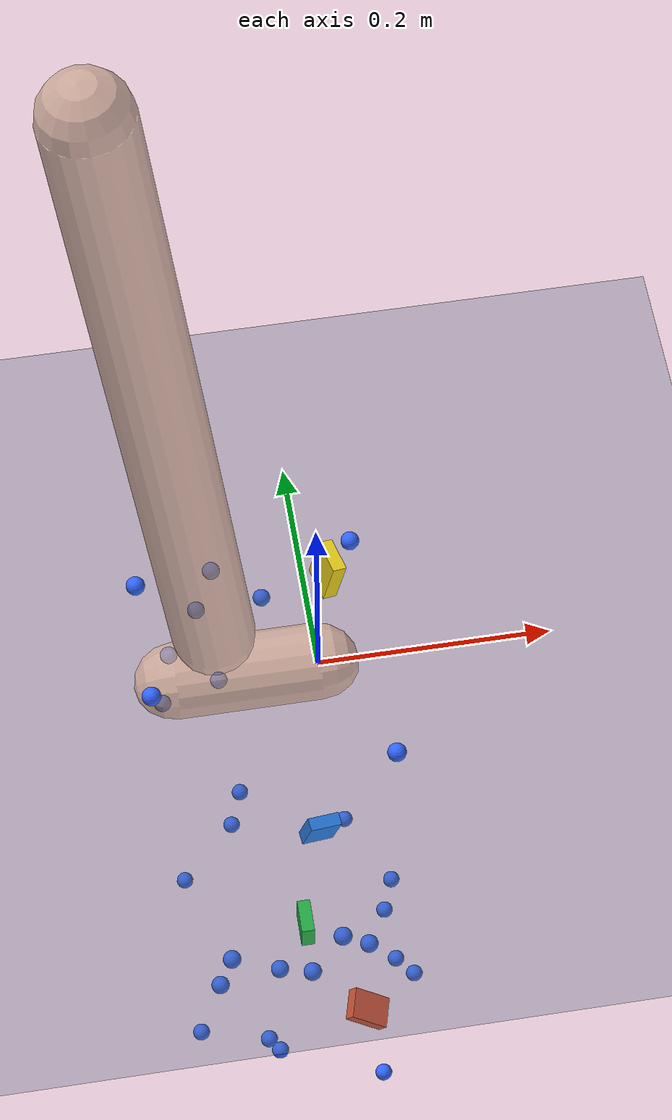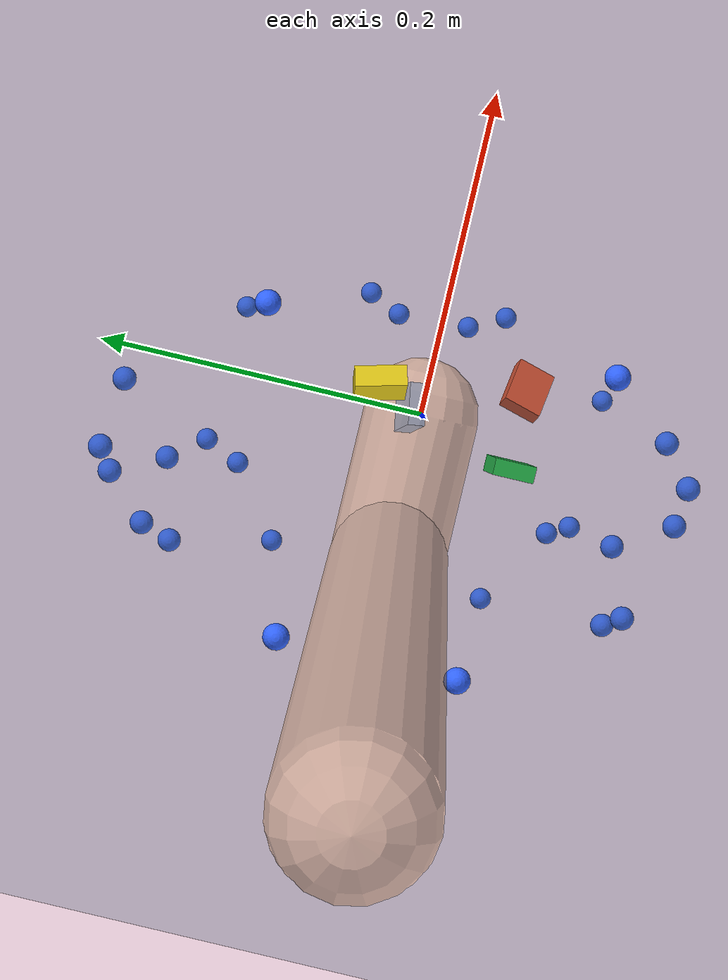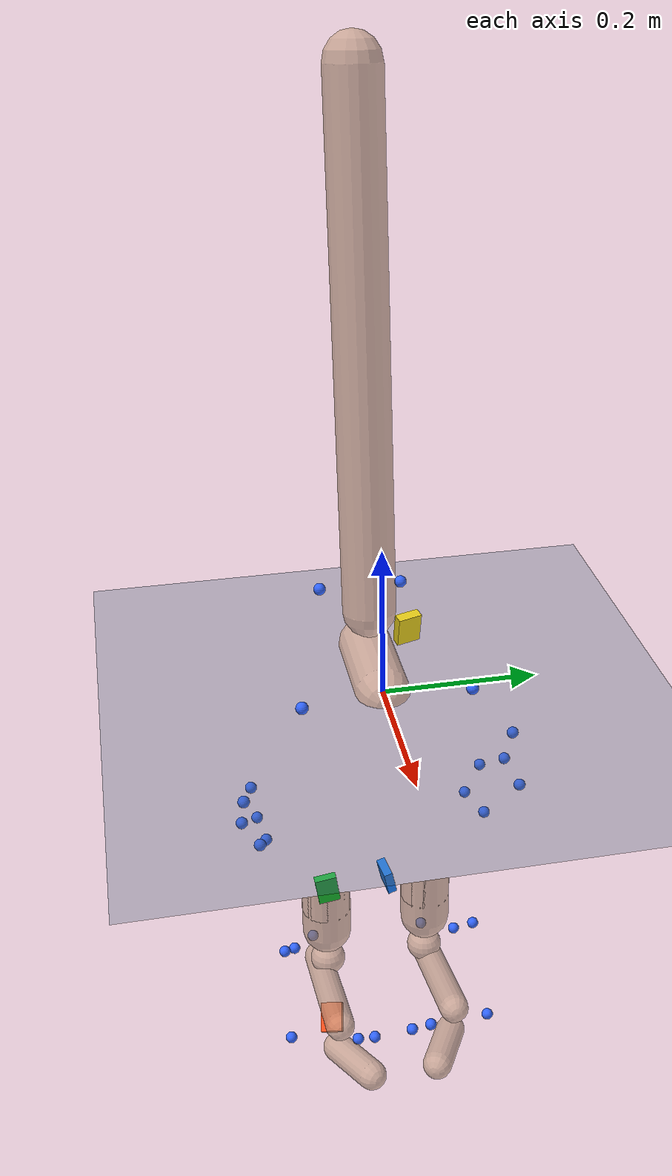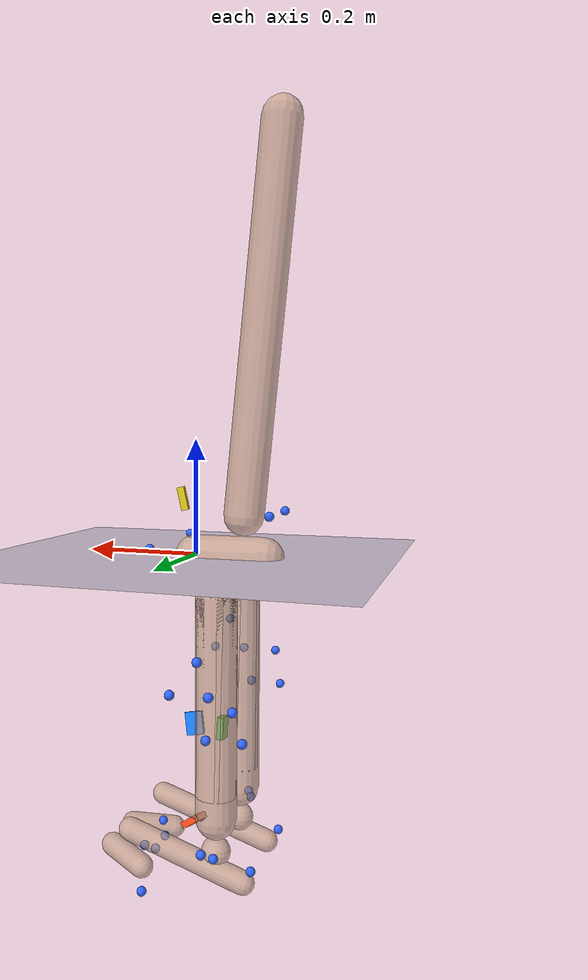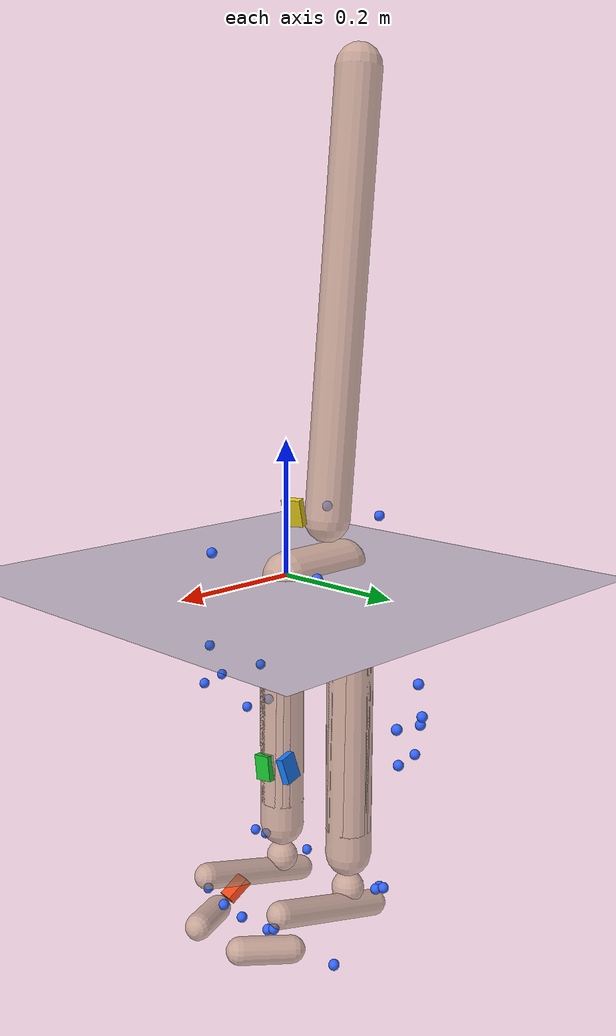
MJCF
<mujoco model="AB11">
  <compiler angle="radian" autolimits="true"/>
  <option timestep="0.005" gravity="0 0 -9.81"><flag contact="disable"/></option>
  <visual><global offwidth="1280" offheight="720"/></visual>
  <default><joint limited="false" damping="0"/><geom contype="0" conaffinity="0"/></default>
  <asset>
    <texture name="grid" type="2d" builtin="checker" rgb1="0.2 0.3 0.4" rgb2="0.3 0.4 0.5" width="512" height="512"/>
    <material name="grid" texture="grid" texrepeat="2 2" texuniform="true"/>
    <material name="skin" rgba="0.8 0.65 0.55 0.7"/>
  </asset>
  <worldbody>
    <light pos="0 0 4" dir="0 0 -1"/>
    <geom name="floor" type="plane" size="0 0 0.05" material="grid"/>
    <body name="pelvis" pos="0 0 0" quat="1 0 0 0">
      <joint name="pelvis_tx" type="slide" axis="1 0 0"/>
      <joint name="pelvis_ty" type="slide" axis="0 0 1"/>
      <joint name="pelvis_tz" type="slide" axis="0 -1 0"/>
      <joint name="pelvis_tilt" type="hinge" axis="0 -1 0"/>
      <joint name="pelvis_list" type="hinge" axis="1 0 0"/>
      <joint name="pelvis_rotation" type="hinge" axis="0 0 1"/>
      <inertial pos="-0.061201244 0 0" mass="12.6039" diaginertia="0.12603888 0.12603888 0.12603888"/>
      <geom type="capsule" fromto="0 0 0 -0.12240249 0 0" size="0.035" material="skin" mass="0"/>
      <site name="m_R_ASIS" pos="0.048936453 -0.10960037 0.023121593" size="0.008" rgba="0.2 0.4 1 1" group="2"/>
      <site name="m_L_ASIS" pos="0.044424087 0.10541173 0.020390817" size="0.008" rgba="0.2 0.4 1 1" group="2"/>
      <site name="m_L_PSIS" pos="-0.1454088 0.053619719 0.075536089" size="0.008" rgba="0.2 0.4 1 1" group="2"/>
      <site name="m_R_PSIS" pos="-0.14596148 -0.05526812 0.075868356" size="0.008" rgba="0.2 0.4 1 1" group="2"/>
      <body name="femur_r" pos="-0.061201244 -0.072281526 -0.057219268" quat="1 0 0 0">
        <joint name="hip_flexion_r" type="hinge" axis="0 -1 0"/>
        <joint name="hip_adduction_r" type="hinge" axis="1 0 0"/>
        <joint name="hip_rotation_r" type="hinge" axis="0 0 1"/>
        <inertial pos="0 0 -0.16983119" mass="9.95447" diaginertia="0.099544712 0.099544712 0.099544712"/>
        <geom type="capsule" fromto="0 0 0 0 0 -0.33966237" size="0.035" material="skin" mass="0"/>
        <site name="m_R_Thigh_Upper" pos="0.052751042 -0.11138745 -0.094199915" size="0.008" rgba="0.2 0.4 1 1" group="2"/>
        <site name="m_R_Thigh_Front" pos="0.078444144 -0.095782994 -0.14768847" size="0.008" rgba="0.2 0.4 1 1" group="2"/>
        <site name="m_R_Thigh_Rear" pos="0.02541492 -0.11365941 -0.15002444" size="0.008" rgba="0.2 0.4 1 1" group="2"/>
        <site name="m_R_Knee_Lat" pos="8.3187958e-05 -0.062828074 -0.41461082" size="0.008" rgba="0.2 0.4 1 1" group="2"/>
        <site name="imu_thigh" type="box" size="0.02 0.015 0.006" pos="0.061528606 0.076250625 -0.24433938" quat="0.4454855 0.62912082 -0.46639883 0.43384536" rgba="0.1 0.5 1 1" group="1"/>
        <body name="tibia_r" pos="0 0 0" quat="1 0 0 0">
          <joint name="knee_r_translation1" type="slide" axis="1 0 0"/>
          <joint name="knee_r_translation2" type="slide" axis="0 0 1"/>
          <joint name="knee_angle_r" type="hinge" axis="0 -1 0"/>
          <inertial pos="0 0 -0.18992679" mass="3.96781" diaginertia="0.039678115 0.039678115 0.039678115"/>
          <geom type="capsule" fromto="0 0 0 0 0 -0.37985358" size="0.035" material="skin" mass="0"/>
          <site name="m_R_Shank_Upper" pos="-0.042580495 -0.093266895 -0.14469274" size="0.008" rgba="0.2 0.4 1 1" group="2"/>
          <site name="m_R_Shank_Front" pos="0.00060809651 -0.080438524 -0.203919" size="0.008" rgba="0.2 0.4 1 1" group="2"/>
          <site name="m_R_Shank_Rear" pos="-0.05382057 -0.086382779 -0.20648568" size="0.008" rgba="0.2 0.4 1 1" group="2"/>
          <site name="m_R_Ankle_Lat" pos="-0.0084761744 -0.0474634 -0.41917348" size="0.008" rgba="0.2 0.4 1 1" group="2"/>
          <site name="imu_shank" type="box" size="0.02 0.015 0.006" pos="0.035138861 -0.0029203524 -0.2751565" quat="0.70858569 0.050016444 0.70220432 0.048101681" rgba="0.1 0.8 0.2 1" group="1"/>
          <body name="talus_r" pos="0 0 -0.43743181" quat="1 0 0 0">
            <joint name="ankle_angle_r" type="hinge" axis="-0.10501355 -0.97912632 -0.17402245"/>
            <inertial pos="0 0 0" mass="0.107021" diaginertia="0.0010702121 0.0010702121 0.0010702121"/>
            <geom type="sphere" size="0.025" material="skin" mass="0"/>
            <body name="calcn_r" pos="-0.049612906 -0.0080568836 -0.042675034" quat="1 0 0 0">
              <joint name="subtalar_angle_r" type="hinge" axis="0.78717961 0.12094949 0.60474746"/>
              <inertial pos="0.10167379 0 0.030502136" mass="1.33777" diaginertia="0.013377652 0.013377652 0.013377652"/>
              <geom type="capsule" fromto="0 0 0 0.20334757 0 0.061004272" size="0.02" material="skin" mass="0"/>
              <site name="m_R_Heel" pos="-0.020713559 -0.0040161753 0.02232455" size="0.008" rgba="0.2 0.4 1 1" group="2"/>
              <site name="m_R_Toe_Lat" pos="0.14859023 -0.061846743 -0.0048650342" size="0.008" rgba="0.2 0.4 1 1" group="2"/>
              <site name="m_R_Toe_Med" pos="0.18008326 0.052711611 0.0037480969" size="0.008" rgba="0.2 0.4 1 1" group="2"/>
              <site name="m_R_Toe_Tip" pos="0.19346821 0.026422144 0.019797309" size="0.008" rgba="0.2 0.4 1 1" group="2"/>
              <site name="imu_foot" type="box" size="0.02 0.015 0.006" pos="0.14265625 -0.0022869369 0.015756522" quat="0.94293599 0.10454229 0.29728979 -0.107524" rgba="1 0.3 0.1 1" group="1"/>
              <body name="toes_r" pos="0.18179273 -0.0010980769 -0.0020334757" quat="1 0 0 0">
                <joint name="mtp_angle_r" type="hinge" axis="-0.5809544 -0.81393611 0"/>
                <inertial pos="0.03517913 0.017792913 0.0061004272" mass="0.231808" diaginertia="0.0023180795 0.0023180795 0.0023180795"/>
                <geom type="capsule" fromto="0 0 0 0.070358261 0.035585826 0.012200854" size="0.02" material="skin" mass="0"/>
              </body>
            </body>
          </body>
        </body>
      </body>
      <body name="femur_l" pos="-0.061201244 0.072281526 -0.057219268" quat="1 0 0 0">
        <joint name="hip_flexion_l" type="hinge" axis="0 -1 0"/>
        <joint name="hip_adduction_l" type="hinge" axis="-1 0 0"/>
        <joint name="hip_rotation_l" type="hinge" axis="0 0 -1"/>
        <inertial pos="0 0 -0.16983119" mass="9.95447" diaginertia="0.099544712 0.099544712 0.099544712"/>
        <geom type="capsule" fromto="0 0 0 0 0 -0.33966237" size="0.035" material="skin" mass="0"/>
        <site name="m_L_Thigh_Upper" pos="-0.0082576639 0.124067 -0.0803325" size="0.008" rgba="0.2 0.4 1 1" group="2"/>
        <site name="m_L_Thigh_Front" pos="0.037115125 0.1231811 -0.13617482" size="0.008" rgba="0.2 0.4 1 1" group="2"/>
        <site name="m_L_Thigh_Rear" pos="-0.024949283 0.11865743 -0.13524856" size="0.008" rgba="0.2 0.4 1 1" group="2"/>
        <site name="m_L_Knee_Lat" pos="0.0019590685 0.073530826 -0.41013477" size="0.008" rgba="0.2 0.4 1 1" group="2"/>
        <body name="tibia_l" pos="0 0 0" quat="1 0 0 0">
          <joint name="knee_l_translation1" type="slide" axis="1 0 0"/>
          <joint name="knee_l_translation2" type="slide" axis="0 0 1"/>
          <joint name="knee_angle_l" type="hinge" axis="0 -1 0"/>
          <inertial pos="0 0 -0.18992679" mass="3.96781" diaginertia="0.039678115 0.039678115 0.039678115"/>
          <geom type="capsule" fromto="0 0 0 0 0 -0.37985358" size="0.035" material="skin" mass="0"/>
          <site name="m_L_Shank_Upper" pos="-0.055419677 0.091723986 -0.16369712" size="0.008" rgba="0.2 0.4 1 1" group="2"/>
          <site name="m_L_Shank_Front" pos="-0.010650331 0.088052472 -0.21472464" size="0.008" rgba="0.2 0.4 1 1" group="2"/>
          <site name="m_L_Shank_Rear" pos="-0.066233053 0.073667658 -0.21848681" size="0.008" rgba="0.2 0.4 1 1" group="2"/>
          <site name="m_L_Ankle_Lat" pos="-0.010599875 0.047663019 -0.42715416" size="0.008" rgba="0.2 0.4 1 1" group="2"/>
          <body name="talus_l" pos="0 0 -0.43743181" quat="1 0 0 0">
            <joint name="ankle_angle_l" type="hinge" axis="0.10501355 -0.97912632 0.17402245"/>
            <inertial pos="0 0 0" mass="0.107021" diaginertia="0.0010702121 0.0010702121 0.0010702121"/>
            <geom type="sphere" size="0.025" material="skin" mass="0"/>
            <body name="calcn_l" pos="-0.049612906 0.0080568836 -0.042675034" quat="1 0 0 0">
              <joint name="subtalar_angle_l" type="hinge" axis="-0.78717961 0.12094949 -0.60474746"/>
              <inertial pos="0.10167379 0 0.030502136" mass="1.33777" diaginertia="0.013377652 0.013377652 0.013377652"/>
              <geom type="capsule" fromto="0 0 0 0.20334757 0 0.061004272" size="0.02" material="skin" mass="0"/>
              <site name="m_L_Heel" pos="-0.014171201 0.0015840368 0.022304634" size="0.008" rgba="0.2 0.4 1 1" group="2"/>
              <site name="m_L_Toe_Lat" pos="0.15634028 0.062743871 -0.011517099" size="0.008" rgba="0.2 0.4 1 1" group="2"/>
              <site name="m_L_Toe_Med" pos="0.17763675 -0.053491491 0.0046613457" size="0.008" rgba="0.2 0.4 1 1" group="2"/>
              <site name="m_L_Toe_Tip" pos="0.18849883 -0.029088747 0.020246697" size="0.008" rgba="0.2 0.4 1 1" group="2"/>
              <body name="toes_l" pos="0.18179273 0.0010980769 -0.0020334757" quat="1 0 0 0">
                <joint name="mtp_angle_l" type="hinge" axis="0.5809544 -0.81393611 0"/>
                <inertial pos="0.03517913 -0.017792913 0.0061004272" mass="0.231808" diaginertia="0.0023180795 0.0023180795 0.0023180795"/>
                <geom type="capsule" fromto="0 0 0 0.070358261 -0.035585826 0.012200854" size="0.02" material="skin" mass="0"/>
              </body>
            </body>
          </body>
        </body>
      </body>
      <body name="torso" pos="-0.087170655 0 0.070550232" quat="1 0 0 0">
        <joint name="lumbar_extension" type="hinge" axis="0 -1 0"/>
        <joint name="lumbar_bending" type="hinge" axis="1 0 0"/>
        <joint name="lumbar_rotation" type="hinge" axis="0 0 1"/>
        <inertial pos="-0.030789215 0 0.32841829" mass="36.6404" diaginertia="0.36640425 0.36640425 0.36640425"/>
        <geom type="capsule" fromto="0 0 0 -0.061578429 0 0.65683658" size="0.035" material="skin" mass="0"/>
        <site name="imu_trunk" type="box" size="0.02 0.015 0.006" pos="0.10026843 0.028767968 0.029290735" quat="0.61844016 -0.086632825 0.77505144 0.096549364" rgba="0.9 0.8 0.1 1" group="1"/>
      </body>
    </body>
  </worldbody>
  <sensor>
<accelerometer name="imu_foot_acc" site="imu_foot"/>
<gyro name="imu_foot_gyr" site="imu_foot"/>
<accelerometer name="imu_shank_acc" site="imu_shank"/>
<gyro name="imu_shank_gyr" site="imu_shank"/>
<accelerometer name="imu_thigh_acc" site="imu_thigh"/>
<gyro name="imu_thigh_gyr" site="imu_thigh"/>
<accelerometer name="imu_trunk_acc" site="imu_trunk"/>
<gyro name="imu_trunk_gyr" site="imu_trunk"/>
</sensor>
</mujoco>
